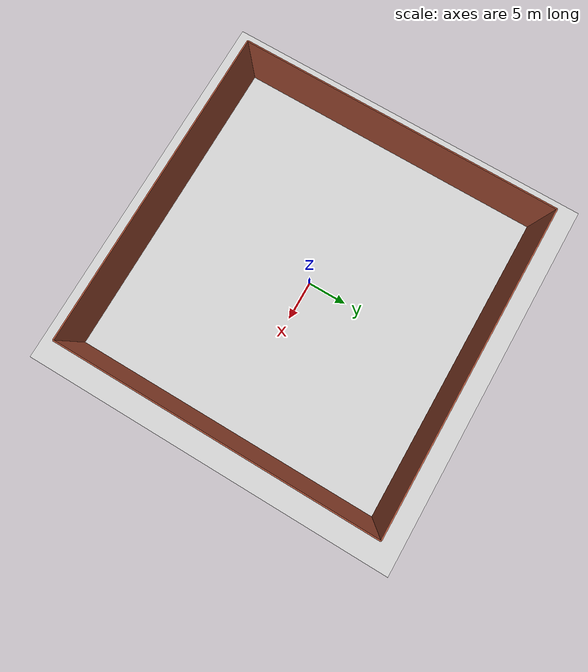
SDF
<sdf version="1.7">
 <world name="default">
  <light name="sun" type="directional">
   <pose>0 0 10 0 -0 0</pose>
   <diffuse>0.8 0.8 0.8 1</diffuse>
   <specular>0.2 0.2 0.2 1</specular>
   <attenuation>
    <range>1000</range>
    <constant>0.9</constant>
    <linear>0.01</linear>
    <quadratic>0.001</quadratic>
   </attenuation>
   <direction>-0.5 0.1 -0.9</direction>
   <spot><inner_angle>0</inner_angle><outer_angle>0</outer_angle><falloff>0</falloff></spot>
  </light>
  <model name="ground_plane">
   <static>1</static>
   <link name="link">
    <collision name="collision">
     <geometry><plane><normal>0 0 1</normal><size>100 100</size></plane></geometry>
     <surface>
      <contact><collide_bitmask>65535</collide_bitmask></contact>
      <friction><ode><mu>100</mu><mu2>50</mu2></ode></friction>
     </surface>
    </collision>
    <visual name="visual">
     <cast_shadows>0</cast_shadows>
     <geometry><plane><normal>0 0 1</normal><size>100 100</size></plane></geometry>
     <material>
      <script><uri>file://media/materials/scripts/gazebo.material</uri><name>Gazebo/Grey</name></script>
     </material>
    </visual>
   </link>
  </model>
  <gravity>0 0 -9.8</gravity>
  <magnetic_field>6e-06 2.3e-05 -4.2e-05</magnetic_field>
  <atmosphere type="adiabatic"/>
  <physics type="ode">
   <max_step_size>0.001</max_step_size>
   <real_time_factor>1</real_time_factor>
   <real_time_update_rate>1000</real_time_update_rate>
  </physics>
  <scene><ambient>0.4 0.4 0.4 1</ambient><background>0.7 0.7 0.7 1</background><shadows>1</shadows></scene>
  <spherical_coordinates>
   <surface_model>EARTH_WGS84</surface_model>
   <latitude_deg>0</latitude_deg>
   <longitude_deg>0</longitude_deg>
   <elevation>0</elevation>
   <heading_deg>0</heading_deg>
  </spherical_coordinates>
  <model name="sim_room_square">
   <link name="Wall_14">
    <collision name="Wall_14_Collision">
     <geometry><box><size>40 0.15 8</size></box></geometry>
     <pose>0 0 4 0 -0 0</pose>
    </collision>
    <visual name="Wall_14_Visual">
     <pose>0 0 4 0 -0 0</pose>
     <geometry><box><size>40 0.15 8</size></box></geometry>
     <material>
      <script><uri>file://media/materials/scripts/gazebo.material</uri><name>Gazebo/Bricks</name></script>
      <ambient>1 1 1 1</ambient>
     </material>
     <meta><layer>0</layer></meta>
    </visual>
    <pose>20 -0 0 0 -0 -1.5708</pose>
   </link>
   <link name="Wall_15">
    <collision name="Wall_15_Collision">
     <geometry><box><size>40 0.15 8</size></box></geometry>
     <pose>0 0 4 0 -0 0</pose>
    </collision>
    <visual name="Wall_15_Visual">
     <pose>0 0 4 0 -0 0</pose>
     <geometry><box><size>40 0.15 8</size></box></geometry>
     <material>
      <script><uri>file://media/materials/scripts/gazebo.material</uri><name>Gazebo/Bricks</name></script>
      <ambient>1 1 1 1</ambient>
     </material>
     <meta><layer>0</layer></meta>
    </visual>
    <pose>0 -20 0 0 -0 3.14159</pose>
   </link>
   <link name="Wall_16">
    <collision name="Wall_16_Collision">
     <geometry><box><size>40 0.15 8</size></box></geometry>
     <pose>0 0 4 0 -0 0</pose>
    </collision>
    <visual name="Wall_16_Visual">
     <pose>0 0 4 0 -0 0</pose>
     <geometry><box><size>40 0.15 8</size></box></geometry>
     <material>
      <script><uri>file://media/materials/scripts/gazebo.material</uri><name>Gazebo/Bricks</name></script>
      <ambient>1 1 1 1</ambient>
     </material>
     <meta><layer>0</layer></meta>
    </visual>
    <pose>-20 -0 0 0 -0 1.5708</pose>
   </link>
   <link name="Wall_19">
    <collision name="Wall_19_Collision">
     <geometry><box><size>40 0.15 8</size></box></geometry>
     <pose>0 0 4 0 -0 0</pose>
    </collision>
    <visual name="Wall_19_Visual">
     <pose>0 0 4 0 -0 0</pose>
     <geometry><box><size>40 0.15 8</size></box></geometry>
     <material>
      <script><uri>file://media/materials/scripts/gazebo.material</uri><name>Gazebo/Bricks</name></script>
      <ambient>1 1 1 1</ambient>
     </material>
     <meta><layer>0</layer></meta>
    </visual>
    <pose>0 20 0 0 -0 0</pose>
   </link>
   <static>1</static>
  </model>
 </world>
</sdf>
